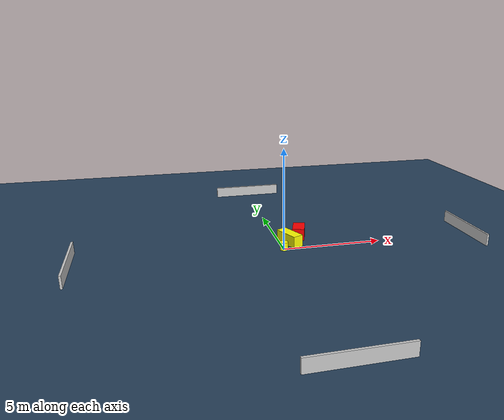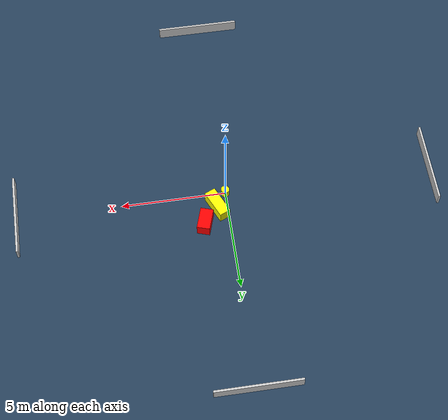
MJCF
<?xml version="1.0" ?>
<mujoco model="generated_environment">
  <option timestep="0.01" integrator="RK4" cone="elliptic"/>
  <default>
    <geom density="1"/>
  </default>
  <asset>
    <texture builtin="gradient" height="3072" name="skybox" rgb1="0.3 0.5 0.7" rgb2="0 0 0" type="skybox" width="512"/>
    <texture builtin="checker" height="300" name="groundplane" rgb1="0.2 0.3 0.4" rgb2="0.1 0.2 0.3" type="2d" width="300"/>
    <material name="groundplane" reflectance="0.2" texrepeat="5 5" texture="groundplane"/>
  </asset>
  <worldbody>
    <light dir="0 0 -1" directional="true" pos="0 0 1.5"/>
    <geom condim="3" friction="0.5 0.005 0.001" material="groundplane" name="floor" pos="0 0 0" size="0 0 0.05" type="plane"/>
    <body name="walls">
      <geom name="wall_1" condim="4" pos="-10.0 0.0 0.3" rgba="0.800000011920929 0.800000011920929 0.800000011920929 1.0" size="0.05 2.0 0.3" type="box"/>
      <geom name="wall_2" condim="4" pos="10.0 0.0 0.3" rgba="0.800000011920929 0.800000011920929 0.800000011920929 1.0" size="0.05 2.0 0.3" type="box"/>
      <geom name="wall_3" condim="4" pos="0.0 -10.0 0.3" rgba="0.800000011920929 0.800000011920929 0.800000011920929 1.0" size="2.0 0.05 0.3" type="box"/>
      <geom name="wall_4" condim="4" pos="0.0 10.0 0.3" rgba="0.800000011920929 0.800000011920929 0.800000011920929 1.0" size="2.0 0.05 0.3" type="box"/>
    </body>
    <body name="robot">
      <joint name="joint_x" type="slide" pos="0 0 0" axis="1 0 0"/>
      <joint name="joint_y" type="slide" pos="0 0 0" axis="0 1 0"/>
      <geom name="robot" type="cylinder" pos="0.0 0.0 0.2" size="0.2 0.2 0.0" mass="5.0" friction="1.0 0.005 0.0001" condim="4" rgba="1.0 1.0 0.0 1.0"/>
    </body>
    <body name="obstacle_1_movable">
      <geom name="obstacle_1_movable" condim="4" pos="0.47816085404244946 0.7350671193330155 0.3" euler="0 0 114.07299421736562" friction="0.0 0.005 0.001" rgba="1.0 1.0 0.0 1.0" size="0.6961376732606878 0.2751854894813767 0.3" type="box" mass="0.1"/>
      <joint type="free"/>
    </body>
    <body name="obstacle_2_static">
      <geom name="obstacle_2_static" condim="4" pos="1.1761044352388519 1.543519181309126 0.3" euler="0 0 342.3260752920078" friction="0.0 0.005 0.001" rgba="1.0 0.0 0.0 1.0" size="0.30699421362181617 0.5257159051336038 0.3" type="box"/>
    </body>
  </worldbody>
  <actuator>
    <motor name="actuator_x" joint="joint_x" gear="1" ctrlrange="-1 1"/>
    <motor name="actuator_y" joint="joint_y" gear="1" ctrlrange="-1 1"/>
  </actuator>
</mujoco>
